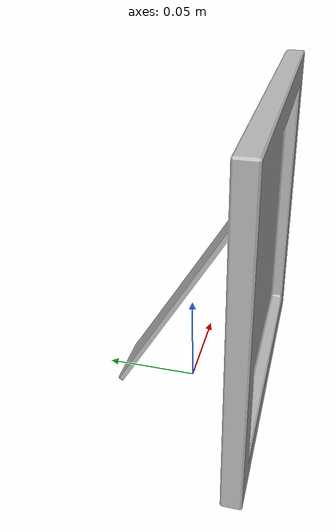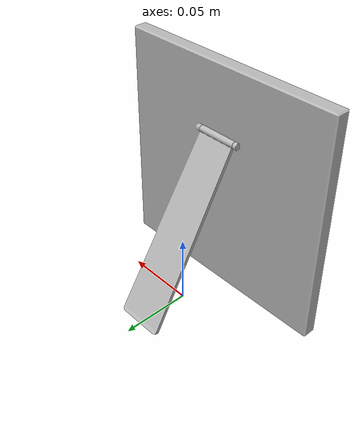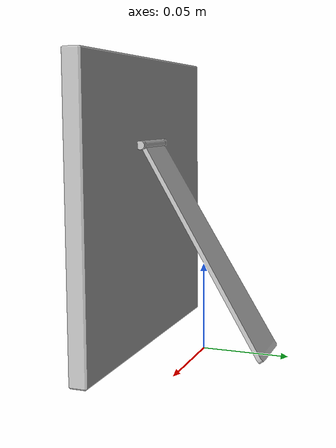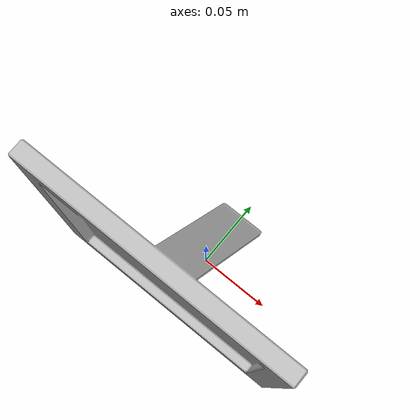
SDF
<?xml version="1.0"?>
<sdf version="1.6">
  <model name="aws_robomaker_residential_DeskPortraitC_01">
    <link name="link_DeskPortraitC_01">
      <inertial>
        <mass>1</mass>
        <inertia>
          <ixx>0.0835</ixx>
          <ixy>0</ixy>
          <ixz>0</ixz>
          <iyy>0.16</iyy>
          <iyz>0</iyz>
          <izz>0.08347</izz>
        </inertia>
      </inertial>
      <collision name="collision">
        <geometry>
          <mesh>
            <uri>model://aws_robomaker_residential_DeskPortraitC_01/meshes/aws_DeskPortraitC_01_collision.DAE</uri>
            <scale>1 1 1</scale>
          </mesh>
        </geometry>
      </collision>
      <visual name="visual">
        <geometry>
          <mesh>
            <uri>model://aws_robomaker_residential_DeskPortraitC_01/meshes/aws_DeskPortraitC_01_visual.DAE</uri>
          </mesh>
        </geometry>
        <meta>
          <layer> 1 </layer>
        </meta>
      </visual>
    </link>
  </model>
</sdf>
